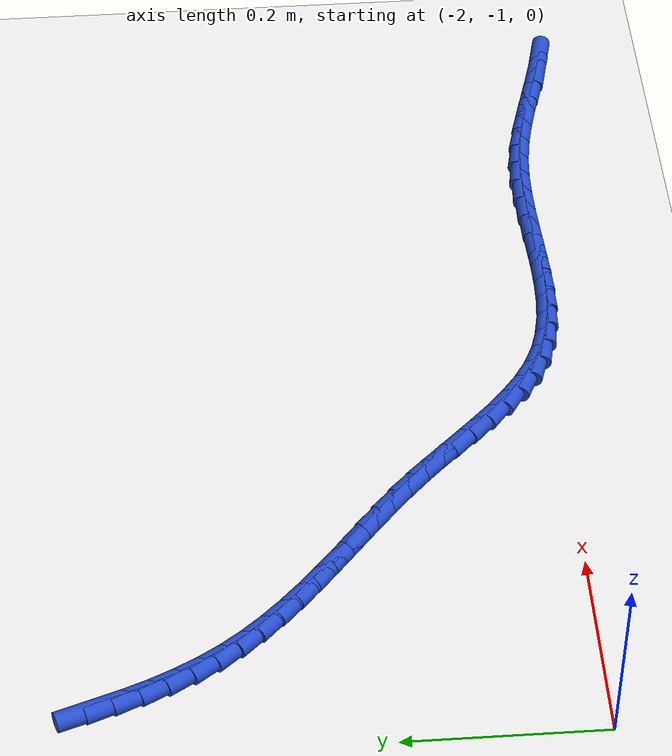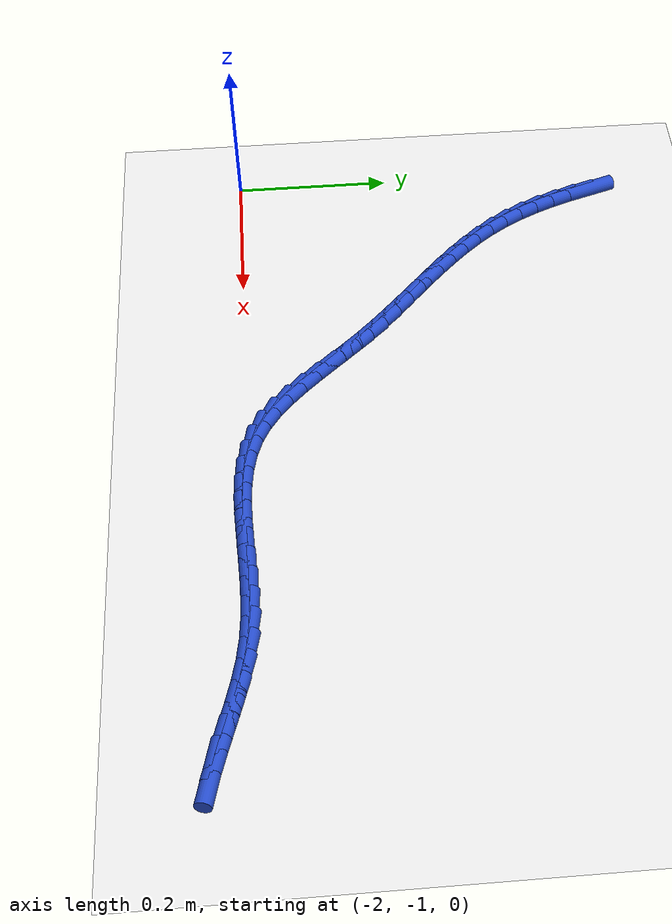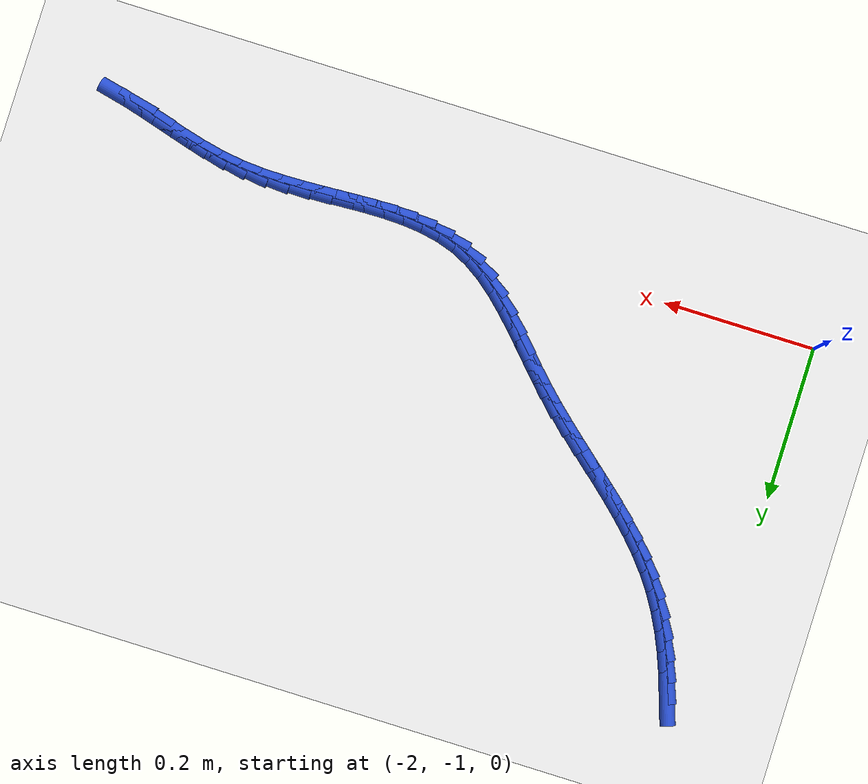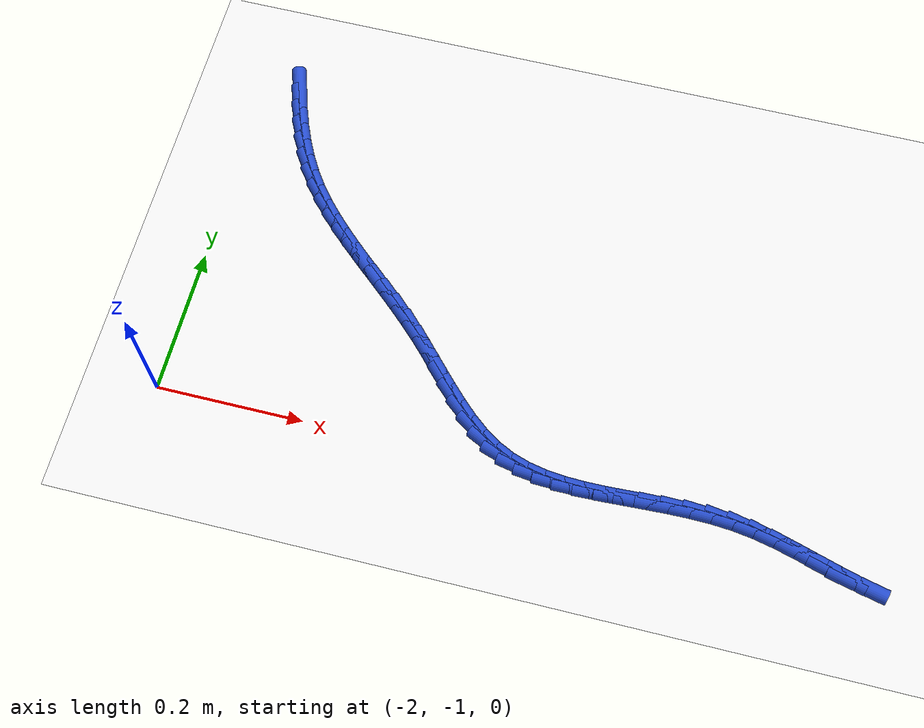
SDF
<sdf version="1.6">
 <world name="default">
  <model name="ground_plane">
   <static>1</static>
   <link name="link">
    <collision name="collision">
     <geometry><plane><normal>0 0 1</normal><size>100 100</size></plane></geometry>
     <surface><friction><ode><mu>100</mu><mu2>50</mu2></ode></friction></surface>
    </collision>
    <visual name="visual">
     <cast_shadows>0</cast_shadows>
     <geometry><plane><normal>0 0 1</normal><size>100 100</size></plane></geometry>
     <material>
      <script><uri>file://media/materials/scripts/gazebo.material</uri><name>Gazebo/WhiteGlow</name></script>
     </material>
    </visual>
   </link>
  </model>
  <model name="line">
   <link name="link_146">
    <pose>-1.9496727151572146 -0.5248444061189723 0.01 0 1.57 -1.2466808194206151</pose>
    <collision name="collision">
     <geometry><cylinder><radius>0.01</radius><length>0.08</length></cylinder></geometry>
    </collision>
    <visual name="visual">
     <material>
      <script><name>Gazebo/Blue</name><uri>file://media/materials/scripts/gazebo.material</uri></script>
     </material>
     <geometry><cylinder><radius>0.01</radius><length>0.08</length></cylinder></geometry>
    </visual>
   </link>
   <link name="link_147">
    <pose>-1.9410493747306492 -0.5505119257952577 0.01 0 1.57 -1.201523827517612</pose>
    <collision name="collision">
     <geometry><cylinder><radius>0.01</radius><length>0.08</length></cylinder></geometry>
    </collision>
    <visual name="visual">
     <material>
      <script><name>Gazebo/Blue</name><uri>file://media/materials/scripts/gazebo.material</uri></script>
     </material>
     <geometry><cylinder><radius>0.01</radius><length>0.08</length></cylinder></geometry>
    </visual>
   </link>
   <link name="link_148">
    <pose>-1.9313331150376556 -0.5756168239525797 0.01 0 1.57 -1.1496312197951142</pose>
    <collision name="collision">
     <geometry><cylinder><radius>0.01</radius><length>0.08</length></cylinder></geometry>
    </collision>
    <visual name="visual">
     <material>
      <script><name>Gazebo/Blue</name><uri>file://media/materials/scripts/gazebo.material</uri></script>
     </material>
     <geometry><cylinder><radius>0.01</radius><length>0.08</length></cylinder></geometry>
    </visual>
   </link>
   <link name="link_149">
    <pose>-1.9204178650553339 -0.5999828128970532 0.01 0 1.57 -1.090408082583757</pose>
    <collision name="collision">
     <geometry><cylinder><radius>0.01</radius><length>0.08</length></cylinder></geometry>
    </collision>
    <visual name="visual">
     <material>
      <script><name>Gazebo/Blue</name><uri>file://media/materials/scripts/gazebo.material</uri></script>
     </material>
     <geometry><cylinder><radius>0.01</radius><length>0.08</length></cylinder></geometry>
    </visual>
   </link>
   <link name="link_150">
    <pose>-1.908197553760785 -0.6234336049347934 0.01 0 1.57 -1.0233084413881108</pose>
    <collision name="collision">
     <geometry><cylinder><radius>0.01</radius><length>0.08</length></cylinder></geometry>
    </collision>
    <visual name="visual">
     <material>
      <script><name>Gazebo/Blue</name><uri>file://media/materials/scripts/gazebo.material</uri></script>
     </material>
     <geometry><cylinder><radius>0.01</radius><length>0.08</length></cylinder></geometry>
    </visual>
   </link>
   <link name="link_151">
    <pose>-1.8945661101311098 -0.6457929123719154 0.01 0 1.57 -0.9497976584948813</pose>
    <collision name="collision">
     <geometry><cylinder><radius>0.01</radius><length>0.08</length></cylinder></geometry>
    </collision>
    <visual name="visual">
     <material>
      <script><name>Gazebo/Blue</name><uri>file://media/materials/scripts/gazebo.material</uri></script>
     </material>
     <geometry><cylinder><radius>0.01</radius><length>0.08</length></cylinder></geometry>
    </visual>
   </link>
   <link name="link_152">
    <pose>-1.8794485952885356 -0.6669239439771419 0.01 0 1.57 -0.8818068227505376</pose>
    <collision name="collision">
     <geometry><cylinder><radius>0.01</radius><length>0.08</length></cylinder></geometry>
    </collision>
    <visual name="visual">
     <material>
      <script><name>Gazebo/Blue</name><uri>file://media/materials/scripts/gazebo.material</uri></script>
     </material>
     <geometry><cylinder><radius>0.01</radius><length>0.08</length></cylinder></geometry>
    </visual>
   </link>
   <link name="link_153">
    <pose>-1.862964948567042 -0.6869371449358307 0.01 0 1.57 -0.8247373280943152</pose>
    <collision name="collision">
     <geometry><cylinder><radius>0.01</radius><length>0.08</length></cylinder></geometry>
    </collision>
    <visual name="visual">
     <material>
      <script><name>Gazebo/Blue</name><uri>file://media/materials/scripts/gazebo.material</uri></script>
     </material>
     <geometry><cylinder><radius>0.01</radius><length>0.08</length></cylinder></geometry>
    </visual>
   </link>
   <link name="link_154">
    <pose>-1.845310358379903 -0.7060384267892387 0.01 0 1.57 -0.7790592470919216</pose>
    <collision name="collision">
     <geometry><cylinder><radius>0.01</radius><length>0.08</length></cylinder></geometry>
    </collision>
    <visual name="visual">
     <material>
      <script><name>Gazebo/Blue</name><uri>file://media/materials/scripts/gazebo.material</uri></script>
     </material>
     <geometry><cylinder><radius>0.01</radius><length>0.08</length></cylinder></geometry>
    </visual>
   </link>
   <link name="link_155">
    <pose>-1.8266801741284262 -0.7244339053195393 0.01 0 1.57 -0.7448203047353144</pose>
    <collision name="collision">
     <geometry><cylinder><radius>0.01</radius><length>0.08</length></cylinder></geometry>
    </collision>
    <visual name="visual">
     <material>
      <script><name>Gazebo/Blue</name><uri>file://media/materials/scripts/gazebo.material</uri></script>
     </material>
     <geometry><cylinder><radius>0.01</radius><length>0.08</length></cylinder></geometry>
    </visual>
   </link>
   <link name="link_156">
    <pose>-1.8072697452139193 -0.7423296963089063 0.01 0 1.57 -0.7218333461725672</pose>
    <collision name="collision">
     <geometry><cylinder><radius>0.01</radius><length>0.08</length></cylinder></geometry>
    </collision>
    <visual name="visual">
     <material>
      <script><name>Gazebo/Blue</name><uri>file://media/materials/scripts/gazebo.material</uri></script>
     </material>
     <geometry><cylinder><radius>0.01</radius><length>0.08</length></cylinder></geometry>
    </visual>
   </link>
   <link name="link_157">
    <pose>-1.78727442103769 -0.7599319155395137 0.01 0 1.57 -0.7098132898493277</pose>
    <collision name="collision">
     <geometry><cylinder><radius>0.01</radius><length>0.08</length></cylinder></geometry>
    </collision>
    <visual name="visual">
     <material>
      <script><name>Gazebo/Blue</name><uri>file://media/materials/scripts/gazebo.material</uri></script>
     </material>
     <geometry><cylinder><radius>0.01</radius><length>0.08</length></cylinder></geometry>
    </visual>
   </link>
   <link name="link_158">
    <pose>-1.766889551001047 -0.7774466787935349 0.01 0 1.57 -0.7084644273852709</pose>
    <collision name="collision">
     <geometry><cylinder><radius>0.01</radius><length>0.08</length></cylinder></geometry>
    </collision>
    <visual name="visual">
     <material>
      <script><name>Gazebo/Blue</name><uri>file://media/materials/scripts/gazebo.material</uri></script>
     </material>
     <geometry><cylinder><radius>0.01</radius><length>0.08</length></cylinder></geometry>
    </visual>
   </link>
   <link name="link_159">
    <pose>-1.7463104845052968 -0.7950801018531436 0.01 0 1.57 -0.7175218173295789</pose>
    <collision name="collision">
     <geometry><cylinder><radius>0.01</radius><length>0.08</length></cylinder></geometry>
    </collision>
    <visual name="visual">
     <material>
      <script><name>Gazebo/Blue</name><uri>file://media/materials/scripts/gazebo.material</uri></script>
     </material>
     <geometry><cylinder><radius>0.01</radius><length>0.08</length></cylinder></geometry>
    </visual>
   </link>
   <link name="link_160">
    <pose>-1.7257325709517488 -0.8130383005005136 0.01 0 1.57 -0.7367538619917875</pose>
    <collision name="collision">
     <geometry><cylinder><radius>0.01</radius><length>0.08</length></cylinder></geometry>
    </collision>
    <visual name="visual">
     <material>
      <script><name>Gazebo/Blue</name><uri>file://media/materials/scripts/gazebo.material</uri></script>
     </material>
     <geometry><cylinder><radius>0.01</radius><length>0.08</length></cylinder></geometry>
    </visual>
   </link>
   <link name="link_161">
    <pose>-1.7053511597417101 -0.8315273905178189 0.01 0 1.57 -0.76593231917258</pose>
    <collision name="collision">
     <geometry><cylinder><radius>0.01</radius><length>0.08</length></cylinder></geometry>
    </collision>
    <visual name="visual">
     <material>
      <script><name>Gazebo/Blue</name><uri>file://media/materials/scripts/gazebo.material</uri></script>
     </material>
     <geometry><cylinder><radius>0.01</radius><length>0.08</length></cylinder></geometry>
    </visual>
   </link>
   <link name="link_162">
    <pose>-1.6853616002764882 -0.8507534876872326 0.01 0 1.57 -0.799819143311732</pose>
    <collision name="collision">
     <geometry><cylinder><radius>0.01</radius><length>0.08</length></cylinder></geometry>
    </collision>
    <visual name="visual">
     <material>
      <script><name>Gazebo/Blue</name><uri>file://media/materials/scripts/gazebo.material</uri></script>
     </material>
     <geometry><cylinder><radius>0.01</radius><length>0.08</length></cylinder></geometry>
    </visual>
   </link>
   <link name="link_163">
    <pose>-1.6658882726840343 -0.8707967223374603 0.01 0 1.57 -0.8181498255921017</pose>
    <collision name="collision">
     <geometry><cylinder><radius>0.01</radius><length>0.08</length></cylinder></geometry>
    </collision>
    <visual name="visual">
     <material>
      <script><name>Gazebo/Blue</name><uri>file://media/materials/scripts/gazebo.material</uri></script>
     </material>
     <geometry><cylinder><radius>0.01</radius><length>0.08</length></cylinder></geometry>
    </visual>
   </link>
   <link name="link_164">
    <pose>-1.6467629255647 -0.8912177420131798 0.01 0 1.57 -0.8160802441358672</pose>
    <collision name="collision">
     <geometry><cylinder><radius>0.01</radius><length>0.08</length></cylinder></geometry>
    </collision>
    <visual name="visual">
     <material>
      <script><name>Gazebo/Blue</name><uri>file://media/materials/scripts/gazebo.material</uri></script>
     </material>
     <geometry><cylinder><radius>0.01</radius><length>0.08</length></cylinder></geometry>
    </visual>
   </link>
   <link name="link_165">
    <pose>-1.627741893954755 -0.9114433192506487 0.01 0 1.57 -0.793076595666086</pose>
    <collision name="collision">
     <geometry><cylinder><radius>0.01</radius><length>0.08</length></cylinder></geometry>
    </collision>
    <visual name="visual">
     <material>
      <script><name>Gazebo/Blue</name><uri>file://media/materials/scripts/gazebo.material</uri></script>
     </material>
     <geometry><cylinder><radius>0.01</radius><length>0.08</length></cylinder></geometry>
    </visual>
   </link>
   <link name="link_166">
    <pose>-1.6085815128145549 -0.9309002264513555 0.01 0 1.57 -0.7474862623752822</pose>
    <collision name="collision">
     <geometry><cylinder><radius>0.01</radius><length>0.08</length></cylinder></geometry>
    </collision>
    <visual name="visual">
     <material>
      <script><name>Gazebo/Blue</name><uri>file://media/materials/scripts/gazebo.material</uri></script>
     </material>
     <geometry><cylinder><radius>0.01</radius><length>0.08</length></cylinder></geometry>
    </visual>
   </link>
   <link name="link_167">
    <pose>-1.5890381171044514 -0.9490152360167874 0.01 0 1.57 -0.6766674146090345</pose>
    <collision name="collision">
     <geometry><cylinder><radius>0.01</radius><length>0.08</length></cylinder></geometry>
    </collision>
    <visual name="visual">
     <material>
      <script><name>Gazebo/Blue</name><uri>file://media/materials/scripts/gazebo.material</uri></script>
     </material>
     <geometry><cylinder><radius>0.01</radius><length>0.08</length></cylinder></geometry>
    </visual>
   </link>
   <link name="link_168">
    <pose>-1.5688680417847993 -0.9652151203484325 0.01 0 1.57 -0.5775523515244626</pose>
    <collision name="collision">
     <geometry><cylinder><radius>0.01</radius><length>0.08</length></cylinder></geometry>
    </collision>
    <visual name="visual">
     <material>
      <script><name>Gazebo/Blue</name><uri>file://media/materials/scripts/gazebo.material</uri></script>
     </material>
     <geometry><cylinder><radius>0.01</radius><length>0.08</length></cylinder></geometry>
    </visual>
   </link>
   <link name="link_169">
    <pose>-1.547827621815952 -0.9789266518477788 0.01 0 1.57 -0.44884814443216026</pose>
    <collision name="collision">
     <geometry><cylinder><radius>0.01</radius><length>0.08</length></cylinder></geometry>
    </collision>
    <visual name="visual">
     <material>
      <script><name>Gazebo/Blue</name><uri>file://media/materials/scripts/gazebo.material</uri></script>
     </material>
     <geometry><cylinder><radius>0.01</radius><length>0.08</length></cylinder></geometry>
    </visual>
   </link>
   <link name="link_170">
    <pose>-1.5256793697261353 -0.9895940301804976 0.01 0 1.57 -0.3128612623155988</pose>
    <collision name="collision">
     <geometry><cylinder><radius>0.01</radius><length>0.08</length></cylinder></geometry>
    </collision>
    <visual name="visual">
     <material>
      <script><name>Gazebo/Blue</name><uri>file://media/materials/scripts/gazebo.material</uri></script>
     </material>
     <geometry><cylinder><radius>0.01</radius><length>0.08</length></cylinder></geometry>
    </visual>
   </link>
   <link name="link_171">
    <pose>-1.502355107132071 -0.9971390854122392 0.01 0 1.57 -0.19710827885671922</pose>
    <collision name="collision">
     <geometry><cylinder><radius>0.01</radius><length>0.08</length></cylinder></geometry>
    </collision>
    <visual name="visual">
     <material>
      <script><name>Gazebo/Blue</name><uri>file://media/materials/scripts/gazebo.material</uri></script>
     </material>
     <geometry><cylinder><radius>0.01</radius><length>0.08</length></cylinder></geometry>
    </visual>
   </link>
   <link name="link_172">
    <pose>-1.477972631591845 -1.0020082961319567 0.01 0 1.57 -0.10496040864452637</pose>
    <collision name="collision">
     <geometry><cylinder><radius>0.01</radius><length>0.08</length></cylinder></geometry>
    </collision>
    <visual name="visual">
     <material>
      <script><name>Gazebo/Blue</name><uri>file://media/materials/scripts/gazebo.material</uri></script>
     </material>
     <geometry><cylinder><radius>0.01</radius><length>0.08</length></cylinder></geometry>
    </visual>
   </link>
   <link name="link_173">
    <pose>-1.4526592608164952 -1.0046749978120835 0.01 0 1.57 -0.03588189969657343</pose>
    <collision name="collision">
     <geometry><cylinder><radius>0.01</radius><length>0.08</length></cylinder></geometry>
    </collision>
    <visual name="visual">
     <material>
      <script><name>Gazebo/Blue</name><uri>file://media/materials/scripts/gazebo.material</uri></script>
     </material>
     <geometry><cylinder><radius>0.01</radius><length>0.08</length></cylinder></geometry>
    </visual>
   </link>
   <link name="link_174">
    <pose>-1.4265423125170578 -1.005612525925052 0.01 0 1.57 0.01187969004055777</pose>
    <collision name="collision">
     <geometry><cylinder><radius>0.01</radius><length>0.08</length></cylinder></geometry>
    </collision>
    <visual name="visual">
     <material>
      <script><name>Gazebo/Blue</name><uri>file://media/materials/scripts/gazebo.material</uri></script>
     </material>
     <geometry><cylinder><radius>0.01</radius><length>0.08</length></cylinder></geometry>
    </visual>
   </link>
   <link name="link_175">
    <pose>-1.399749104404571 -1.0052942159432945 0.01 0 1.57 0.04023891306944565</pose>
    <collision name="collision">
     <geometry><cylinder><radius>0.01</radius><length>0.08</length></cylinder></geometry>
    </collision>
    <visual name="visual">
     <material>
      <script><name>Gazebo/Blue</name><uri>file://media/materials/scripts/gazebo.material</uri></script>
     </material>
     <geometry><cylinder><radius>0.01</radius><length>0.08</length></cylinder></geometry>
    </visual>
   </link>
   <link name="link_176">
    <pose>-1.372406954190072 -1.0041934033392441 0.01 0 1.57 0.05074128014363329</pose>
    <collision name="collision">
     <geometry><cylinder><radius>0.01</radius><length>0.08</length></cylinder></geometry>
    </collision>
    <visual name="visual">
     <material>
      <script><name>Gazebo/Blue</name><uri>file://media/materials/scripts/gazebo.material</uri></script>
     </material>
     <geometry><cylinder><radius>0.01</radius><length>0.08</length></cylinder></geometry>
    </visual>
   </link>
   <link name="link_177">
    <pose>-1.344643179584597 -1.0027834235853332 0.01 0 1.57 0.04437201871506134</pose>
    <collision name="collision">
     <geometry><cylinder><radius>0.01</radius><length>0.08</length></cylinder></geometry>
    </collision>
    <visual name="visual">
     <material>
      <script><name>Gazebo/Blue</name><uri>file://media/materials/scripts/gazebo.material</uri></script>
     </material>
     <geometry><cylinder><radius>0.01</radius><length>0.08</length></cylinder></geometry>
    </visual>
   </link>
   <link name="link_178">
    <pose>-1.3165850982991831 -1.0015376121539945 0.01 0 1.57 0.021548696701170888</pose>
    <collision name="collision">
     <geometry><cylinder><radius>0.01</radius><length>0.08</length></cylinder></geometry>
    </collision>
    <visual name="visual">
     <material>
      <script><name>Gazebo/Blue</name><uri>file://media/materials/scripts/gazebo.material</uri></script>
     </material>
     <geometry><cylinder><radius>0.01</radius><length>0.08</length></cylinder></geometry>
    </visual>
   </link>
   <link name="link_179">
    <pose>-1.2883600280448686 -1.0009293045176608 0.01 0 1.57 -0.017777579510087363</pose>
    <collision name="collision">
     <geometry><cylinder><radius>0.01</radius><length>0.08</length></cylinder></geometry>
    </collision>
    <visual name="visual">
     <material>
      <script><name>Gazebo/Blue</name><uri>file://media/materials/scripts/gazebo.material</uri></script>
     </material>
     <geometry><cylinder><radius>0.01</radius><length>0.08</length></cylinder></geometry>
    </visual>
   </link>
   <link name="link_180">
    <pose>-1.2600952865326895 -1.0014318361487642 0.01 0 1.57 -0.07392188880335239</pose>
    <collision name="collision">
     <geometry><cylinder><radius>0.01</radius><length>0.08</length></cylinder></geometry>
    </collision>
    <visual name="visual">
     <material>
      <script><name>Gazebo/Blue</name><uri>file://media/materials/scripts/gazebo.material</uri></script>
     </material>
     <geometry><cylinder><radius>0.01</radius><length>0.08</length></cylinder></geometry>
    </visual>
   </link>
   <link name="link_181">
    <pose>-1.2319181914736839 -1.0035185425197384 0.01 0 1.57 -0.14591213499754424</pose>
    <collision name="collision">
     <geometry><cylinder><radius>0.01</radius><length>0.08</length></cylinder></geometry>
    </collision>
    <visual name="visual">
     <material>
      <script><name>Gazebo/Blue</name><uri>file://media/materials/scripts/gazebo.material</uri></script>
     </material>
     <geometry><cylinder><radius>0.01</radius><length>0.08</length></cylinder></geometry>
    </visual>
   </link>
   <link name="link_182">
    <pose>-1.2039527839474966 -1.0076282419666376 0.01 0 1.57 -0.2132038499896076</pose>
    <collision name="collision">
     <geometry><cylinder><radius>0.01</radius><length>0.08</length></cylinder></geometry>
    </collision>
    <visual name="visual">
     <material>
      <script><name>Gazebo/Blue</name><uri>file://media/materials/scripts/gazebo.material</uri></script>
     </material>
     <geometry><cylinder><radius>0.01</radius><length>0.08</length></cylinder></geometry>
    </visual>
   </link>
   <link name="link_183">
    <pose>-1.1762682397681594 -1.0136217836770047 0.01 0 1.57 -0.2591794678501145</pose>
    <collision name="collision">
     <geometry><cylinder><radius>0.01</radius><length>0.08</length></cylinder></geometry>
    </collision>
    <visual name="visual">
     <material>
      <script><name>Gazebo/Blue</name><uri>file://media/materials/scripts/gazebo.material</uri></script>
     </material>
     <geometry><cylinder><radius>0.01</radius><length>0.08</length></cylinder></geometry>
    </visual>
   </link>
   <link name="link_184">
    <pose>-1.1488882995190153 -1.0208813868472488 0.01 0 1.57 -0.28389658113208904</pose>
    <collision name="collision">
     <geometry><cylinder><radius>0.01</radius><length>0.08</length></cylinder></geometry>
    </collision>
    <visual name="visual">
     <material>
      <script><name>Gazebo/Blue</name><uri>file://media/materials/scripts/gazebo.material</uri></script>
     </material>
     <geometry><cylinder><radius>0.01</radius><length>0.08</length></cylinder></geometry>
    </visual>
   </link>
   <link name="link_185">
    <pose>-1.121835334211977 -1.028774843148026 0.01 0 1.57 -0.28746726876851114</pose>
    <collision name="collision">
     <geometry><cylinder><radius>0.01</radius><length>0.08</length></cylinder></geometry>
    </collision>
    <visual name="visual">
     <material>
      <script><name>Gazebo/Blue</name><uri>file://media/materials/scripts/gazebo.material</uri></script>
     </material>
     <geometry><cylinder><radius>0.01</radius><length>0.08</length></cylinder></geometry>
    </visual>
   </link>
   <link name="link_186">
    <pose>-1.0951317148589579 -1.0366699442499923 0.01 0 1.57 -0.2691874145548844</pose>
    <collision name="collision">
     <geometry><cylinder><radius>0.01</radius><length>0.08</length></cylinder></geometry>
    </collision>
    <visual name="visual">
     <material>
      <script><name>Gazebo/Blue</name><uri>file://media/materials/scripts/gazebo.material</uri></script>
     </material>
     <geometry><cylinder><radius>0.01</radius><length>0.08</length></cylinder></geometry>
    </visual>
   </link>
   <link name="link_187">
    <pose>-1.0687998124718725 -1.0439344818238052 0.01 0 1.57 -0.2273886929237228</pose>
    <collision name="collision">
     <geometry><cylinder><radius>0.01</radius><length>0.08</length></cylinder></geometry>
    </collision>
    <visual name="visual">
     <material>
      <script><name>Gazebo/Blue</name><uri>file://media/materials/scripts/gazebo.material</uri></script>
     </material>
     <geometry><cylinder><radius>0.01</radius><length>0.08</length></cylinder></geometry>
    </visual>
   </link>
  </model>
 </world>
</sdf>
